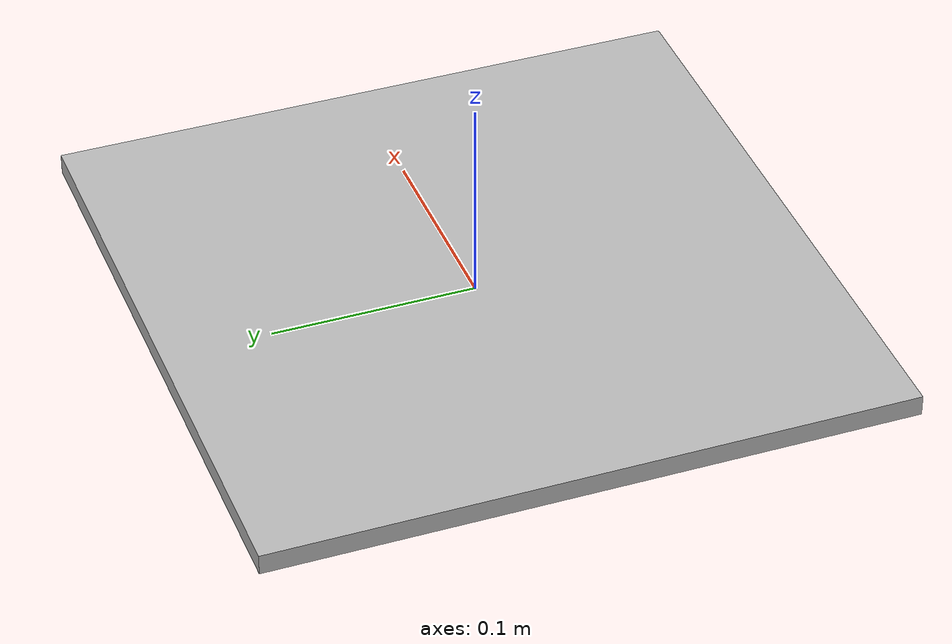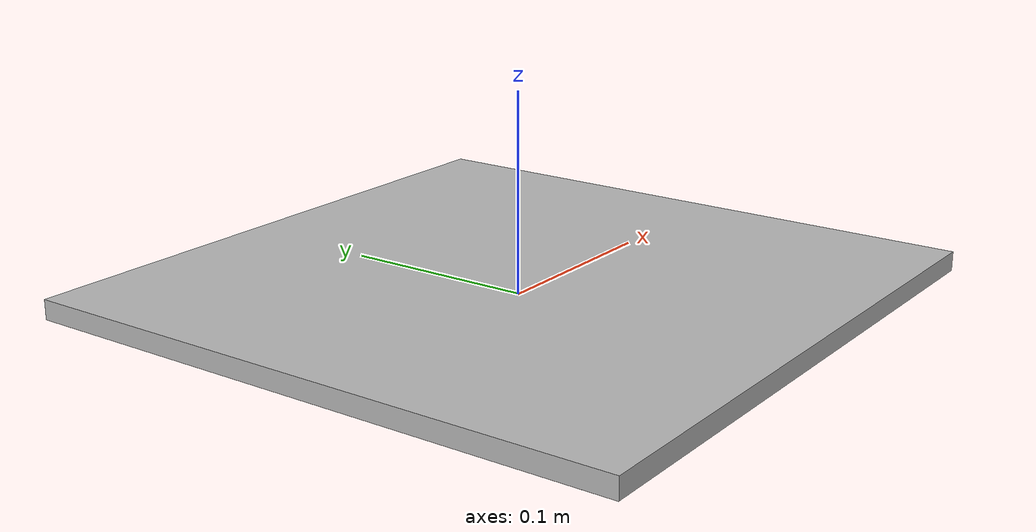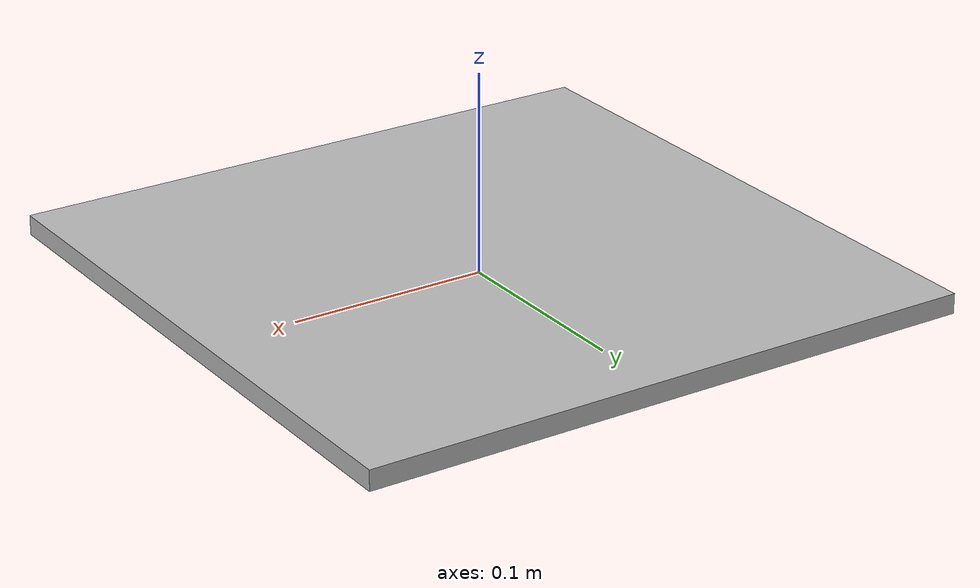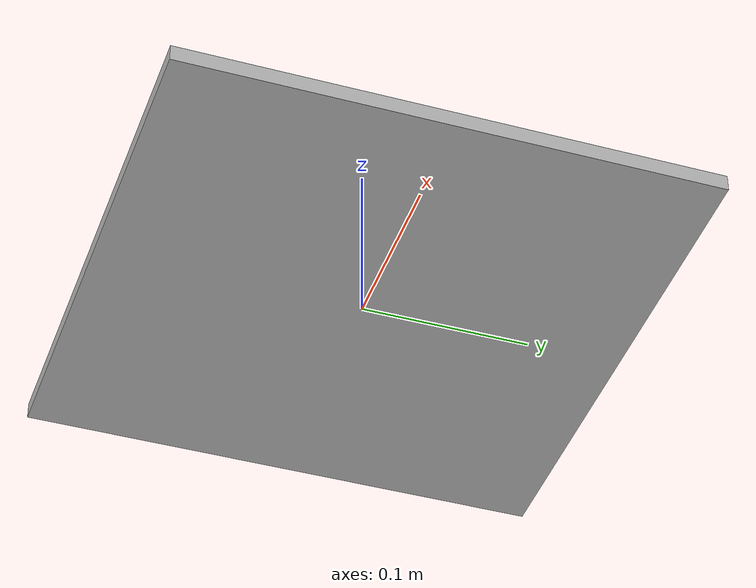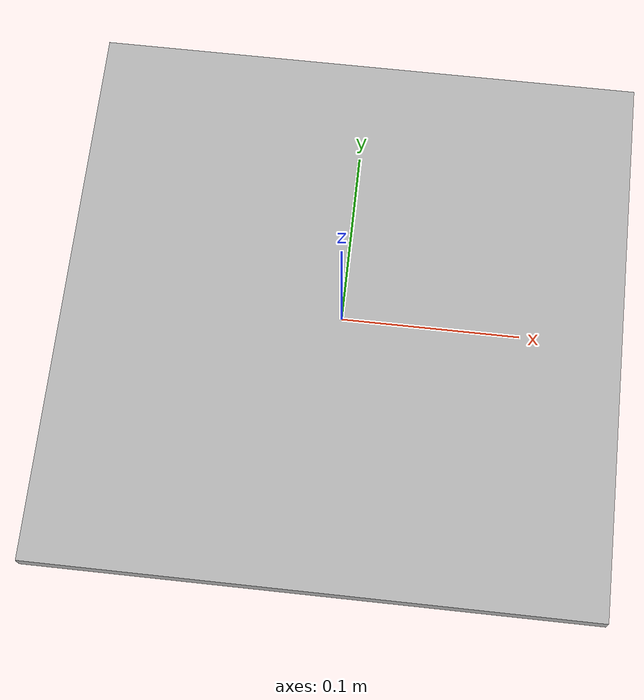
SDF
<?xml version="1.0" ?>
<sdf version="1.5">
  <model name="ar_diamond">
    <static>true</static>
	<pose>0 0 0.005 0 0 0</pose>
    <link name="link">
      <collision name="collision">
        <geometry>
          <box>
            <size>.3125 .3125 .01</size>
          </box>
        </geometry>
      </collision>
      <visual name="visual">
        <cast_shadows>false</cast_shadows>
        <geometry>
          <box>
            <size>.3125 .3125 .01</size>
          </box>
        </geometry>
        <material>
          <script>
            <uri>model://aruco_diamond1234/materials/scripts</uri>
            <uri>model://aruco_diamond1234/materials/textures</uri>
            <name>ar/diamond0</name>
          </script>
        </material>
      </visual>
    </link>
  </model>
</sdf>
